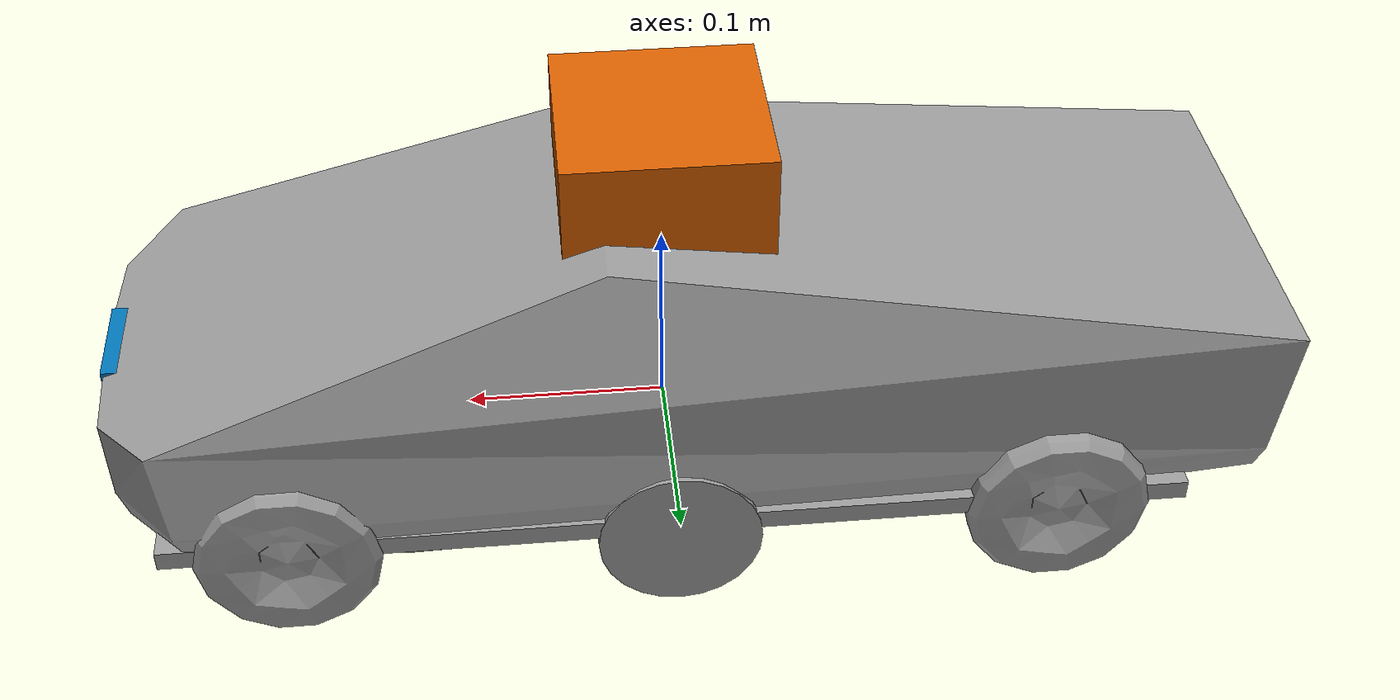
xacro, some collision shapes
<?xml version='1.0'?>

<robot name="my_robot" xmlns:xacro="http://www.ros.org/wiki/xacro">

  <xacro:include filename="$(find my_robot)/urdf/my_robot.gazebo" />

  <link name="robot_footprint"></link>

  <joint name="robot_footprint_joint" type="fixed">
    <origin xyz="0 0 0" rpy="0 0 0" />
    <parent link="robot_footprint"/>
    <child link="chassis" />
  </joint>

  <link name='chassis'>
    <pose>0 0 0.0525 0 0 0</pose>

    <inertial>
      <mass value="10.0"/>
      <origin xyz="0 0 0" rpy=" 0 0 0"/>
      <inertia
          ixx="0.1" ixy="0" ixz="0"
          iyy="0.1" iyz="0"
          izz="0.1"
      />
    </inertial>

    <collision name='collision'>
      <origin xyz="0 0 0" rpy=" 0 0 0"/>
      <geometry>
        <box size=".5 .2 .01"/>
      </geometry>
    </collision>

    <visual name='chassis_visual'>
      <origin xyz="0 0 0" rpy=" 0 0 0"/>
      <geometry>
        <box size=".5 .2 .01"/>
      </geometry>
    </visual>

    <!-- casters -->
    <xacro:property name="caster_x" value="0.1" />

    <collision name='back_caster_collision'>
      <origin xyz="${caster_x} -0.0 -0.03" rpy=" 0 0 0"/>
      <geometry>
        <sphere radius="0.0199"/>
      </geometry>
    </collision>

    <visual name='back_caster_visual'>
      <origin xyz="${caster_x} -0.0 -0.03" rpy=" 0 0 0"/>
      <geometry>
        <sphere radius="0.02"/>
      </geometry>
    </visual>

    <collision name='front_caster_collision'>
      <origin xyz="-${caster_x} -0.0 -0.03" rpy=" 0 0 0"/>
      <geometry>
        <sphere radius="0.0199"/>
      </geometry>
    </collision>

    <visual name='front_caster_visual'>
      <origin xyz="-${caster_x} -0.0 -0.03" rpy=" 0 0 0"/>
      <geometry>
        <sphere radius="0.02"/>
      </geometry>
    </visual>

    <!-- Add the Cybertruck -->
    <visual>
      <origin xyz="0.02 0 -0.05" rpy="0 0 0" />
      <geometry>
        <mesh filename="package://my_robot/meshes/cybertruck.stl"/>
      </geometry>
    </visual>

    <collision>
      <origin xyz="0 0 0" rpy="0 0 0" />
      <geometry>
        <box size=".5 .2 .01"/>
      </geometry>
    </collision>

  </link>

  <!-- Add wheels -->
  <xacro:property name="wheel_radius" value="0.04" />
  <xacro:property name="wheel_mass" value="10" />
  <xacro:property name="wheel_inertia" value="0.2" />

  <link name='left_wheel'>
    <visual>
      <origin xyz="0 0 0" rpy="0 1.5707 1.5707" />
      <geometry>
        <cylinder radius="${wheel_radius}" length="0.035"/>
      </geometry>
    </visual>

    <collision>
      <origin xyz="0 0 0" rpy="0 1.5707 1.5707" />
      <geometry>
        <cylinder radius="${wheel_radius}" length="0.035"/>
      </geometry>
    </collision>

    <inertial>
      <mass value="${wheel_mass}"/>
      <origin xyz="0.0 0 0" rpy=" 0 0 0"/>
      <inertia
        ixx="${wheel_inertia}" ixy="0" ixz="0"
        iyy="${wheel_inertia}" iyz="0"
        izz="${wheel_inertia}"
      />
    </inertial>
  </link>

  <joint type="continuous" name="left_wheel_hinge">
    <origin xyz="0 0.083 -0.01" rpy="0 0 0"/>
    <child link="left_wheel"/>
    <parent link="chassis"/>
    <axis xyz="0 1 0" rpy="0 0 0"/>
    <limit effort="10000" velocity="1000"/>
    <dynamics damping="1.0" friction="1.0"/>
  </joint>

  <link name='right_wheel'>
    <visual>
      <origin xyz="0 0 0" rpy="0 1.5707 1.5707" />
      <geometry>
        <cylinder radius="${wheel_radius}" length="0.035"/>
      </geometry>
    </visual>

    <collision>
      <origin xyz="0 0 0" rpy="0 1.5707 1.5707" />
      <geometry>
        <cylinder radius="${wheel_radius}" length="0.035"/>
      </geometry>
    </collision>

    <inertial>
      <mass value="${wheel_mass}"/>
      <origin xyz="0 0 0" rpy=" 0 0 0"/>
      <inertia
        ixx="${wheel_inertia}" ixy="0" ixz="0"
        iyy="${wheel_inertia}" iyz="0"
        izz="${wheel_inertia}"
      />
    </inertial>
  </link>

  <joint type="continuous" name="right_wheel_hinge">
    <origin xyz="0 -0.083 -0.01" rpy="0 0 0"/>
    <child link="right_wheel"/>
    <parent link="chassis"/>
    <axis xyz="0 1 0" rpy="0 0 0"/>
    <limit effort="10000" velocity="1000"/>
    <dynamics damping="1.0" friction="1.0"/>
  </joint>

  <!-- Add front wheels -->

  <!-- Add camera -->
  <link name="camera_link">
    <visual>
      <origin xyz="0 0 0" rpy="0 0 0" />
      <geometry>
        <box size=".05 .05 .05"/>
      </geometry>
    </visual>

    <collision>
      <origin xyz="0 0 0" rpy="0 0 0" />
      <geometry>
        <box size=".05 .05 .05"/>
      </geometry>
    </collision>

    <inertial>
      <mass value=".1"/>
      <origin xyz="0 0 0" rpy=" 0 0 0"/>
      <inertia
        ixx="1e-6" ixy="0" ixz="0"
        iyy="1e-6" iyz="0"
        izz="1e-6"
      />
      <box_inertia m=".1" x=".05" y=".05" z=".05"/>
    </inertial>
  </link>

  <joint type="fixed" name="camera_joint">
    <origin xyz=".25 0 .03" rpy="0 0 0"/>
    <child link="camera_link"/>
    <parent link="chassis"/>
  </joint>

  <!-- Add Lidar -->
  <link name="hokuyo">
    <visual>
      <origin xyz="0 0 0" rpy="0 0 0" />
      <geometry>
        <mesh filename="package://my_robot/meshes/hokuyo.dae"/>
      </geometry>
    </visual>

    <collision>
      <origin xyz="0 0 0" rpy="0 0 0" />
      <geometry>
        <box size=".1 .1 .1"/>
      </geometry>
    </collision>

    <inertial>
      <mass value="1e-5"/>
      <origin xyz="0 0 0" rpy=" 0 0 0"/>
      <inertia
        ixx="1e-6" ixy="0" ixz="0"
        iyy="1e-6" iyz="0"
        izz="1e-6"
      />
    </inertial>
  </link>

  <joint type="fixed" name="hokuyo_joint">
    <origin xyz=".0 0 .125" rpy="0 0 0"/>
    <child link="hokuyo"/>
    <parent link="chassis"/>
    <axis xyz="0 1 0" rpy="0 0 0"/>
  </joint>

  <!-- Add colors -->
  <gazebo reference="left_wheel">
    <material>Gazebo/Grey</material>
  </gazebo>
  <gazebo reference="right_wheel">
    <material>Gazebo/Grey</material>
  </gazebo>
  <gazebo reference="chassis">
    <material>Gazebo/Gray</material>
  </gazebo>
  <gazebo reference="camera">
    <material>Gazebo/Black</material>
  </gazebo>

  <!-- optical camera -->
  <joint name="camera_optical_joint" type="fixed">
    <origin xyz="0 0 0" rpy="-1.5707 0 -1.5707"/>
    <parent link="camera_link"/>
    <child link="camera_link_optical"/>
  </joint>

  <link name="camera_link_optical">
  </link>

</robot>
